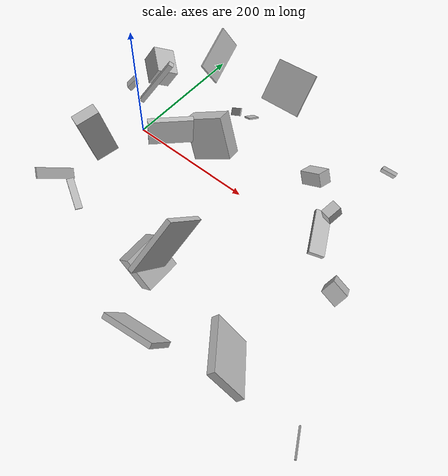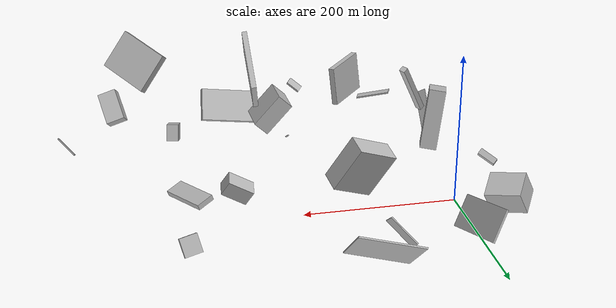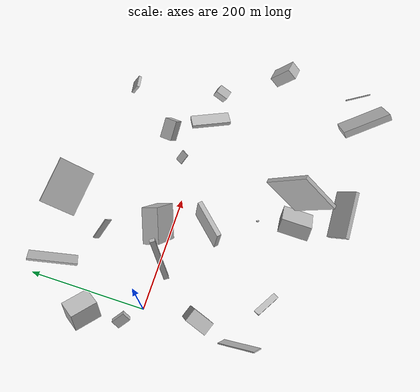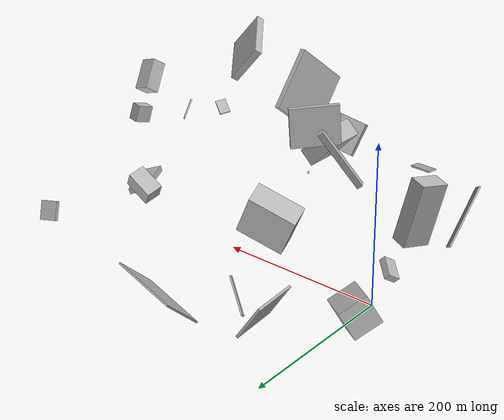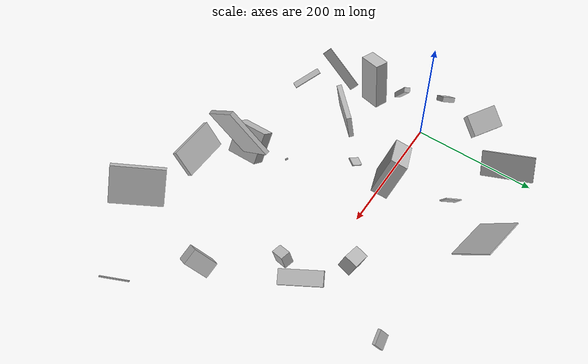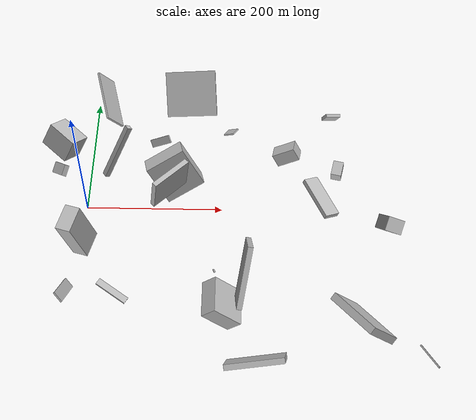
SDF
<sdf version="1.6">
 <world name="default">
  <scene>
   <sky><clouds><speed>12</speed></clouds></sky>
   <ambient>0.4 0.4 0.4 1</ambient>
   <background>0.7 0.7 0.7 1</background>
   <shadows>1</shadows>
  </scene>
  <gravity>0 0 -9.8066</gravity>
  <magnetic_field>6e-06 2.3e-05 -4.2e-05</magnetic_field>
  <physics default="0" name="default_physics" type="ode">
   <ode>
    <solver>
     <type>quick</type>
     <iters>10</iters>
     <sor>1.0</sor>
     <use_dynamic_moi_rescaling>0</use_dynamic_moi_rescaling>
    </solver>
    <constraints>
     <cfm>0</cfm>
     <erp>0.2</erp>
     <contact_max_correcting_vel>100</contact_max_correcting_vel>
     <contact_surface_layer>0.001</contact_surface_layer>
    </constraints>
   </ode>
   <max_step_size>0.004</max_step_size>
   <real_time_factor>1</real_time_factor>
   <real_time_update_rate>250</real_time_update_rate>
  </physics>
  <light name="sun" type="directional">
   <pose>0 0 10 0 0 0</pose>
   <diffuse>0.8 0.8 0.8 1</diffuse>
   <specular>0.2 0.2 0.2 1</specular>
   <attenuation>
    <range>1000</range>
    <constant>0.9</constant>
    <linear>0.01</linear>
    <quadratic>0.001</quadratic>
   </attenuation>
   <direction>-0.5 0.1 -0.9</direction>
  </light>
  <model name="building_1">
   <static>0</static>
   <pose>415.0726611984573 -104.71128233823242 127.29562418353925 -2.1152703250728324 -0.8474486980169066 -1.249589173610394</pose>
   <link name="link">
    <gravity>0</gravity>
    <pose>0 0 11.5 0 0 0</pose>
    <collision name="collision"><geometry><box><size>39 19 23</size></box></geometry></collision>
    <visual name="visual">
     <cast_shadows>0</cast_shadows>
     <geometry><box><size>39 19 23</size></box></geometry>
     <material>
      <script>
       <uri>model://HANNAS_wall/materials/scripts</uri>
       <uri>model://HANNAS_wall/materials/textures</uri>
       <name>vrc/HANNAS_wall</name>
      </script>
     </material>
    </visual>
   </link>
  </model>
  <model name="building_2">
   <static>0</static>
   <pose>-10.36191062315246 -167.49157872754466 43.01075857669578 2.2627752838723287 -0.7781307396091255 -1.5906483167090169</pose>
   <link name="link">
    <gravity>0</gravity>
    <pose>0 0 1.0 0 0 0</pose>
    <collision name="collision"><geometry><box><size>80 16 2</size></box></geometry></collision>
    <visual name="visual">
     <cast_shadows>0</cast_shadows>
     <geometry><box><size>80 16 2</size></box></geometry>
     <material>
      <script>
       <uri>model://HANNAS_wall/materials/scripts</uri>
       <uri>model://HANNAS_wall/materials/textures</uri>
       <name>vrc/HANNAS_wall</name>
      </script>
     </material>
    </visual>
   </link>
  </model>
  <model name="building_3">
   <static>0</static>
   <pose>360.8480330213979 -220.73620874210897 116.65078110071354 -1.1594907542224453 -0.9137755355042385 -2.834283203192186</pose>
   <link name="link">
    <gravity>0</gravity>
    <pose>0 0 38.0 0 0 0</pose>
    <collision name="collision"><geometry><box><size>56 10 76</size></box></geometry></collision>
    <visual name="visual">
     <cast_shadows>0</cast_shadows>
     <geometry><box><size>56 10 76</size></box></geometry>
     <material>
      <script>
       <uri>model://HANNAS_wall/materials/scripts</uri>
       <uri>model://HANNAS_wall/materials/textures</uri>
       <name>vrc/HANNAS_wall</name>
      </script>
     </material>
    </visual>
   </link>
  </model>
  <model name="building_4">
   <static>0</static>
   <pose>484.0103503414582 -241.60170954537125 9.85147222698343 0.9545598660619825 0.2065988599975635 2.0572647780303766</pose>
   <link name="link">
    <gravity>0</gravity>
    <pose>0 0 1.0 0 0 0</pose>
    <collision name="collision"><geometry><box><size>44 2 2</size></box></geometry></collision>
    <visual name="visual">
     <cast_shadows>0</cast_shadows>
     <geometry><box><size>44 2 2</size></box></geometry>
     <material>
      <script>
       <uri>model://HANNAS_wall/materials/scripts</uri>
       <uri>model://HANNAS_wall/materials/textures</uri>
       <name>vrc/HANNAS_wall</name>
      </script>
     </material>
    </visual>
   </link>
  </model>
  <model name="building_5">
   <static>0</static>
   <pose>342.3908872669153 -4.521563487431149 38.49599646801744 0.3188740902779102 -0.10789591685331242 2.045103818120694</pose>
   <link name="link">
    <gravity>0</gravity>
    <pose>0 0 3.5 0 0 0</pose>
    <collision name="collision"><geometry><box><size>67 23 7</size></box></geometry></collision>
    <visual name="visual">
     <cast_shadows>0</cast_shadows>
     <geometry><box><size>67 23 7</size></box></geometry>
     <material>
      <script>
       <uri>model://HANNAS_wall/materials/scripts</uri>
       <uri>model://HANNAS_wall/materials/textures</uri>
       <name>vrc/HANNAS_wall</name>
      </script>
     </material>
    </visual>
   </link>
  </model>
  <model name="building_6">
   <static>0</static>
   <pose>148.1112374550088 186.6118355560165 48.14420070843706 -0.7846096467846027 0.22085074755298778 3.0079693286207836</pose>
   <link name="link">
    <gravity>0</gravity>
    <pose>0 0 1.0 0 0 0</pose>
    <collision name="collision"><geometry><box><size>80 69 2</size></box></geometry></collision>
    <visual name="visual">
     <cast_shadows>0</cast_shadows>
     <geometry><box><size>80 69 2</size></box></geometry>
     <material>
      <script>
       <uri>model://HANNAS_wall/materials/scripts</uri>
       <uri>model://HANNAS_wall/materials/textures</uri>
       <name>vrc/HANNAS_wall</name>
      </script>
     </material>
    </visual>
   </link>
  </model>
  <model name="building_7">
   <static>0</static>
   <pose>232.2609219323176 -160.38225650790565 97.52318923862384 0.73695894538928 0.13444294047512387 -0.10046970336570346</pose>
   <link name="link">
    <gravity>0</gravity>
    <pose>0 0 40.0 0 0 0</pose>
    <collision name="collision"><geometry><box><size>7 80 80</size></box></geometry></collision>
    <visual name="visual">
     <cast_shadows>0</cast_shadows>
     <geometry><box><size>7 80 80</size></box></geometry>
     <material>
      <script>
       <uri>model://HANNAS_wall/materials/scripts</uri>
       <uri>model://HANNAS_wall/materials/textures</uri>
       <name>vrc/HANNAS_wall</name>
      </script>
     </material>
    </visual>
   </link>
  </model>
  <model name="building_8">
   <static>0</static>
   <pose>213.06961086363893 0.6234438828478401 181.1163404198091 -2.5173717894415804 -0.14028297531232306 -2.1295124844804056</pose>
   <link name="link">
    <gravity>0</gravity>
    <pose>0 0 1.0 0 0 0</pose>
    <collision name="collision"><geometry><box><size>12 17 2</size></box></geometry></collision>
    <visual name="visual">
     <cast_shadows>0</cast_shadows>
     <geometry><box><size>12 17 2</size></box></geometry>
     <material>
      <script>
       <uri>model://HANNAS_wall/materials/scripts</uri>
       <uri>model://HANNAS_wall/materials/textures</uri>
       <name>vrc/HANNAS_wall</name>
      </script>
     </material>
    </visual>
   </link>
  </model>
  <model name="building_9">
   <static>0</static>
   <pose>-35.701928153062674 13.256889795904698 63.86260102194881 -0.9050347429687533 -0.45262397704683827 -0.699887336934771</pose>
   <link name="link">
    <gravity>0</gravity>
    <pose>0 0 8.0 0 0 0</pose>
    <collision name="collision"><geometry><box><size>24 8 16</size></box></geometry></collision>
    <visual name="visual">
     <cast_shadows>0</cast_shadows>
     <geometry><box><size>24 8 16</size></box></geometry>
     <material>
      <script>
       <uri>model://HANNAS_wall/materials/scripts</uri>
       <uri>model://HANNAS_wall/materials/textures</uri>
       <name>vrc/HANNAS_wall</name>
      </script>
     </material>
    </visual>
   </link>
  </model>
  <model name="building_10">
   <static>0</static>
   <pose>130.70549428997708 -64.86716899715103 155.11494767229965 -1.6782707852475445 -0.04501050373255063 -2.3262766986638135</pose>
   <link name="link">
    <gravity>0</gravity>
    <pose>0 0 3.5 0 0 0</pose>
    <collision name="collision"><geometry><box><size>59 48 7</size></box></geometry></collision>
    <visual name="visual">
     <cast_shadows>0</cast_shadows>
     <geometry><box><size>59 48 7</size></box></geometry>
     <material>
      <script>
       <uri>model://HANNAS_wall/materials/scripts</uri>
       <uri>model://HANNAS_wall/materials/textures</uri>
       <name>vrc/HANNAS_wall</name>
      </script>
     </material>
    </visual>
   </link>
  </model>
  <model name="building_11">
   <static>0</static>
   <pose>13.297711674606 -97.5602471585265 78.22559867153542 2.0995032667085884 -1.3397696627048985 -2.42990538329218</pose>
   <link name="link">
    <gravity>0</gravity>
    <pose>0 0 11.0 0 0 0</pose>
    <collision name="collision"><geometry><box><size>80 36 22</size></box></geometry></collision>
    <visual name="visual">
     <cast_shadows>0</cast_shadows>
     <geometry><box><size>80 36 22</size></box></geometry>
     <material>
      <script>
       <uri>model://HANNAS_wall/materials/scripts</uri>
       <uri>model://HANNAS_wall/materials/textures</uri>
       <name>vrc/HANNAS_wall</name>
      </script>
     </material>
    </visual>
   </link>
  </model>
  <model name="building_12">
   <static>0</static>
   <pose>128.98465943102633 28.71451565872698 65.5212705798134 1.2023818065610787 -0.4043617939954683 0.35792069453163655</pose>
   <link name="link">
    <gravity>0</gravity>
    <pose>0 0 13.5 0 0 0</pose>
    <collision name="collision"><geometry><box><size>59 64 27</size></box></geometry></collision>
    <visual name="visual">
     <cast_shadows>0</cast_shadows>
     <geometry><box><size>59 64 27</size></box></geometry>
     <material>
      <script>
       <uri>model://HANNAS_wall/materials/scripts</uri>
       <uri>model://HANNAS_wall/materials/textures</uri>
       <name>vrc/HANNAS_wall</name>
      </script>
     </material>
    </visual>
   </link>
  </model>
  <model name="building_13">
   <static>0</static>
   <pose>-45.07276240830489 82.60997472130452 36.989345161316045 0.5010451602256017 -0.20782225693984155 2.4649429998928656</pose>
   <link name="link">
    <gravity>0</gravity>
    <pose>0 0 17.5 0 0 0</pose>
    <collision name="collision"><geometry><box><size>46 35 35</size></box></geometry></collision>
    <visual name="visual">
     <cast_shadows>0</cast_shadows>
     <geometry><box><size>46 35 35</size></box></geometry>
     <material>
      <script>
       <uri>model://HANNAS_wall/materials/scripts</uri>
       <uri>model://HANNAS_wall/materials/textures</uri>
       <name>vrc/HANNAS_wall</name>
      </script>
     </material>
    </visual>
   </link>
  </model>
  <model name="building_14">
   <static>0</static>
   <pose>352.67267378893666 -16.3475916178235 123.52191560473676 1.5750245586095735 1.2604997374072282 1.3449971317402707</pose>
   <link name="link">
    <gravity>0</gravity>
    <pose>0 0 7.0 0 0 0</pose>
    <collision name="collision"><geometry><box><size>20 20 14</size></box></geometry></collision>
    <visual name="visual">
     <cast_shadows>0</cast_shadows>
     <geometry><box><size>20 20 14</size></box></geometry>
     <material>
      <script>
       <uri>model://HANNAS_wall/materials/scripts</uri>
       <uri>model://HANNAS_wall/materials/textures</uri>
       <name>vrc/HANNAS_wall</name>
      </script>
     </material>
    </visual>
   </link>
  </model>
  <model name="building_15">
   <static>0</static>
   <pose>290.16790742329323 -266.121590086971 46.45277781147422 1.7665663432444179 0.6072034404536021 -1.3893192159412144</pose>
   <link name="link">
    <gravity>0</gravity>
    <pose>0 0 40.0 0 0 0</pose>
    <collision name="collision"><geometry><box><size>8 45 80</size></box></geometry></collision>
    <visual name="visual">
     <cast_shadows>0</cast_shadows>
     <geometry><box><size>8 45 80</size></box></geometry>
     <material>
      <script>
       <uri>model://HANNAS_wall/materials/scripts</uri>
       <uri>model://HANNAS_wall/materials/textures</uri>
       <name>vrc/HANNAS_wall</name>
      </script>
     </material>
    </visual>
   </link>
  </model>
  <model name="building_16">
   <static>0</static>
   <pose>191.8099649628806 -134.65068497188716 49.24645773926251 3.022378235714404 -0.8724724162594848 -0.7900317856520233</pose>
   <link name="link">
    <gravity>0</gravity>
    <pose>0 0 2.5 0 0 0</pose>
    <collision name="collision"><geometry><box><size>2 2 5</size></box></geometry></collision>
    <visual name="visual">
     <cast_shadows>0</cast_shadows>
     <geometry><box><size>2 2 5</size></box></geometry>
     <material>
      <script>
       <uri>model://HANNAS_wall/materials/scripts</uri>
       <uri>model://HANNAS_wall/materials/textures</uri>
       <name>vrc/HANNAS_wall</name>
      </script>
     </material>
    </visual>
   </link>
  </model>
  <model name="building_17">
   <static>0</static>
   <pose>57.39924322134064 -12.714852317960135 155.40523349627767 1.391101363891844 -0.9730831592457623 0.731997883912651</pose>
   <link name="link">
    <gravity>0</gravity>
    <pose>0 0 4.0 0 0 0</pose>
    <collision name="collision"><geometry><box><size>80 7 8</size></box></geometry></collision>
    <visual name="visual">
     <cast_shadows>0</cast_shadows>
     <geometry><box><size>80 7 8</size></box></geometry>
     <material>
      <script>
       <uri>model://HANNAS_wall/materials/scripts</uri>
       <uri>model://HANNAS_wall/materials/textures</uri>
       <name>vrc/HANNAS_wall</name>
      </script>
     </material>
    </visual>
   </link>
  </model>
  <model name="building_18">
   <static>0</static>
   <pose>105.81465115397877 105.50966366231137 20.853280369233623 -0.8062183917569548 0.3135749097937046 0.7711662959105028</pose>
   <link name="link">
    <gravity>0</gravity>
    <pose>0 0 6.0 0 0 0</pose>
    <collision name="collision"><geometry><box><size>2 46 12</size></box></geometry></collision>
    <visual name="visual">
     <cast_shadows>0</cast_shadows>
     <geometry><box><size>2 46 12</size></box></geometry>
     <material>
      <script>
       <uri>model://HANNAS_wall/materials/scripts</uri>
       <uri>model://HANNAS_wall/materials/textures</uri>
       <name>vrc/HANNAS_wall</name>
      </script>
     </material>
    </visual>
   </link>
  </model>
  <model name="building_19">
   <static>0</static>
   <pose>196.0964663129924 -195.61708736876773 54.50115416864331 -0.8259483334350435 0.03571013356032984 -1.5712537107213942</pose>
   <link name="link">
    <gravity>0</gravity>
    <pose>0 0 12.0 0 0 0</pose>
    <collision name="collision"><geometry><box><size>50 51 24</size></box></geometry></collision>
    <visual name="visual">
     <cast_shadows>0</cast_shadows>
     <geometry><box><size>50 51 24</size></box></geometry>
     <material>
      <script>
       <uri>model://HANNAS_wall/materials/scripts</uri>
       <uri>model://HANNAS_wall/materials/textures</uri>
       <name>vrc/HANNAS_wall</name>
      </script>
     </material>
    </visual>
   </link>
  </model>
  <model name="building_20">
   <static>0</static>
   <pose>278.51950204086666 50.56175618508973 65.44829935586985 1.0323631937230227 0.23034464691053583 1.417537664004168</pose>
   <link name="link">
    <gravity>0</gravity>
    <pose>0 0 17.0 0 0 0</pose>
    <collision name="collision"><geometry><box><size>21 20 34</size></box></geometry></collision>
    <visual name="visual">
     <cast_shadows>0</cast_shadows>
     <geometry><box><size>21 20 34</size></box></geometry>
     <material>
      <script>
       <uri>model://HANNAS_wall/materials/scripts</uri>
       <uri>model://HANNAS_wall/materials/textures</uri>
       <name>vrc/HANNAS_wall</name>
      </script>
     </material>
    </visual>
   </link>
  </model>
  <model name="building_21">
   <static>0</static>
   <pose>362.2515087992633 140.8901337613138 54.79218333912802 2.7793616764834943 -1.0593798718475604 -1.069707264031822</pose>
   <link name="link">
    <gravity>0</gravity>
    <pose>0 0 2.5 0 0 0</pose>
    <collision name="collision"><geometry><box><size>23 22 5</size></box></geometry></collision>
    <visual name="visual">
     <cast_shadows>0</cast_shadows>
     <geometry><box><size>23 22 5</size></box></geometry>
     <material>
      <script>
       <uri>model://HANNAS_wall/materials/scripts</uri>
       <uri>model://HANNAS_wall/materials/textures</uri>
       <name>vrc/HANNAS_wall</name>
      </script>
     </material>
    </visual>
   </link>
  </model>
  <model name="building_22">
   <static>0</static>
   <pose>40.779668679370786 -177.44859448546075 82.75006709004644 1.8622205996889345 0.1297614811914067 1.0957596986090168</pose>
   <link name="link">
    <gravity>0</gravity>
    <pose>0 0 23.0 0 0 0</pose>
    <collision name="collision"><geometry><box><size>10 2 46</size></box></geometry></collision>
    <visual name="visual">
     <cast_shadows>0</cast_shadows>
     <geometry><box><size>10 2 46</size></box></geometry>
     <material>
      <script>
       <uri>model://HANNAS_wall/materials/scripts</uri>
       <uri>model://HANNAS_wall/materials/textures</uri>
       <name>vrc/HANNAS_wall</name>
      </script>
     </material>
    </visual>
   </link>
  </model>
  <model name="building_23">
   <static>0</static>
   <pose>34.99899557409754 165.80115890035427 45.21354863907323 0.2460585384405047 -0.5377015634622258 0.1253197229161185</pose>
   <link name="link">
    <gravity>0</gravity>
    <pose>0 0 20.5 0 0 0</pose>
    <collision name="collision"><geometry><box><size>3 80 41</size></box></geometry></collision>
    <visual name="visual">
     <cast_shadows>0</cast_shadows>
     <geometry><box><size>3 80 41</size></box></geometry>
     <material>
      <script>
       <uri>model://HANNAS_wall/materials/scripts</uri>
       <uri>model://HANNAS_wall/materials/textures</uri>
       <name>vrc/HANNAS_wall</name>
      </script>
     </material>
    </visual>
   </link>
  </model>
 </world>
</sdf>
